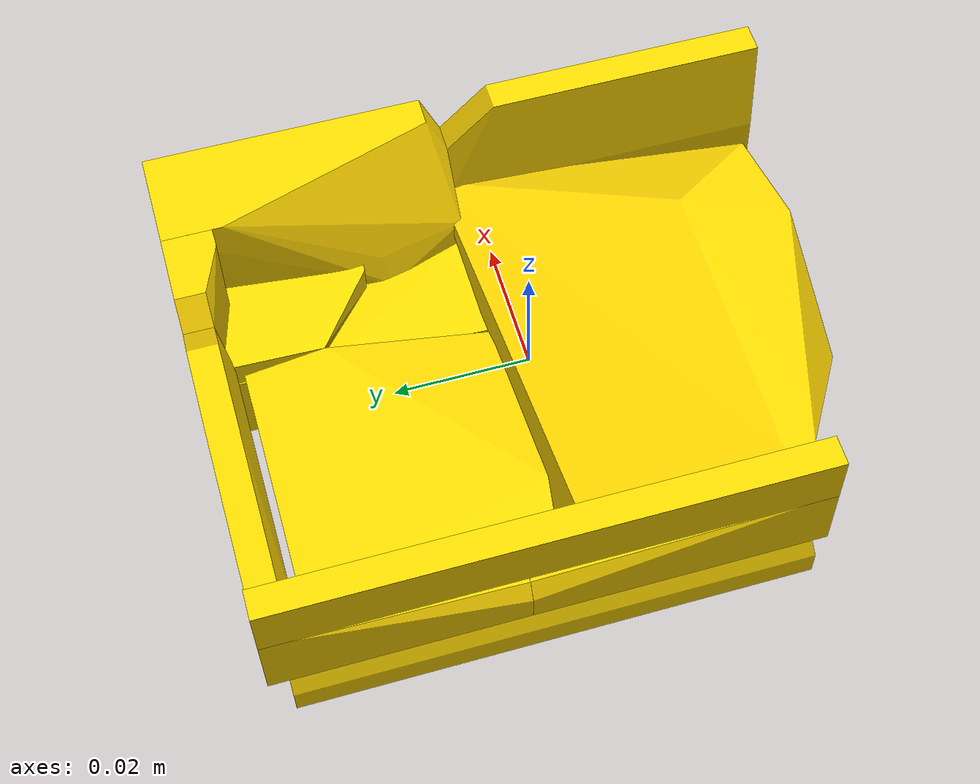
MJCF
<mujoco model="shapenetsem9">
  <asset>
    <mesh file="meshes/shapenetsem9/shapenetsem9_0.stl" name="shapenetsem9_0" scale="0.8 0.8 0.8"/>
    <mesh file="meshes/shapenetsem9/shapenetsem9_1.stl" name="shapenetsem9_1" scale="0.8 0.8 0.8"/>
    <mesh file="meshes/shapenetsem9/shapenetsem9_2.stl" name="shapenetsem9_2" scale="0.8 0.8 0.8"/>
    <mesh file="meshes/shapenetsem9/shapenetsem9_3.stl" name="shapenetsem9_3" scale="0.8 0.8 0.8"/>
    <mesh file="meshes/shapenetsem9/shapenetsem9_4.stl" name="shapenetsem9_4" scale="0.8 0.8 0.8"/>
    <mesh file="meshes/shapenetsem9/shapenetsem9_5.stl" name="shapenetsem9_5" scale="0.8 0.8 0.8"/>
    <mesh file="meshes/shapenetsem9/shapenetsem9_6.stl" name="shapenetsem9_6" scale="0.8 0.8 0.8"/>
    <mesh file="meshes/shapenetsem9/shapenetsem9_7.stl" name="shapenetsem9_7" scale="0.8 0.8 0.8"/>
    <mesh file="meshes/shapenetsem9/shapenetsem9_8.stl" name="shapenetsem9_8" scale="0.8 0.8 0.8"/>
    <mesh file="meshes/shapenetsem9/shapenetsem9_9.stl" name="shapenetsem9_9" scale="0.8 0.8 0.8"/>
    <mesh file="meshes/shapenetsem9/shapenetsem9_10.stl" name="shapenetsem9_10" scale="0.8 0.8 0.8"/>
    <mesh file="meshes/shapenetsem9/shapenetsem9_11.stl" name="shapenetsem9_11" scale="0.8 0.8 0.8"/>
    <texture file="../textures/texture9-4.png" type="2d" name="tex-sem9"/>
    <material name="sem9" reflectance="0.7" texrepeat="90 90" texture="tex-sem9" texuniform="true"/>
  </asset>
  <worldbody>
    <body>
      <body name="collision">
        <geom pos="0 0 0" mesh="shapenetsem9_0" type="mesh" solimp="0.998 0.998 0.001" solref="0.001 1" density="100" friction="0.95 0.3 0.1" rgba="1 0.84 0 1" group="1" condim="4"/>
        <geom pos="0 0 0" mesh="shapenetsem9_1" type="mesh" solimp="0.998 0.998 0.001" solref="0.001 1" density="100" friction="0.95 0.3 0.1" rgba="1 0.84 0 1" group="1" condim="4"/>
        <geom pos="0 0 0" mesh="shapenetsem9_2" type="mesh" solimp="0.998 0.998 0.001" solref="0.001 1" density="100" friction="0.95 0.3 0.1" rgba="1 0.84 0 1" group="1" condim="4"/>
        <geom pos="0 0 0" mesh="shapenetsem9_3" type="mesh" solimp="0.998 0.998 0.001" solref="0.001 1" density="100" friction="0.95 0.3 0.1" rgba="1 0.84 0 1" group="1" condim="4"/>
        <geom pos="0 0 0" mesh="shapenetsem9_4" type="mesh" solimp="0.998 0.998 0.001" solref="0.001 1" density="100" friction="0.95 0.3 0.1" rgba="1 0.84 0 1" group="1" condim="4"/>
        <geom pos="0 0 0" mesh="shapenetsem9_5" type="mesh" solimp="0.998 0.998 0.001" solref="0.001 1" density="100" friction="0.95 0.3 0.1" rgba="1 0.84 0 1" group="1" condim="4"/>
        <geom pos="0 0 0" mesh="shapenetsem9_6" type="mesh" solimp="0.998 0.998 0.001" solref="0.001 1" density="100" friction="0.95 0.3 0.1" rgba="1 0.84 0 1" group="1" condim="4"/>
        <geom pos="0 0 0" mesh="shapenetsem9_7" type="mesh" solimp="0.998 0.998 0.001" solref="0.001 1" density="100" friction="0.95 0.3 0.1" rgba="1 0.84 0 1" group="1" condim="4"/>
        <geom pos="0 0 0" mesh="shapenetsem9_8" type="mesh" solimp="0.998 0.998 0.001" solref="0.001 1" density="100" friction="0.95 0.3 0.1" rgba="1 0.84 0 1" group="1" condim="4"/>
        <geom pos="0 0 0" mesh="shapenetsem9_9" type="mesh" solimp="0.998 0.998 0.001" solref="0.001 1" density="100" friction="0.95 0.3 0.1" rgba="1 0.84 0 1" group="1" condim="4"/>
        <geom pos="0 0 0" mesh="shapenetsem9_10" type="mesh" solimp="0.998 0.998 0.001" solref="0.001 1" density="100" friction="0.95 0.3 0.1" rgba="1 0.84 0 1" group="1" condim="4"/>
        <geom pos="0 0 0" mesh="shapenetsem9_11" type="mesh" solimp="0.998 0.998 0.001" solref="0.001 1" density="100" friction="0.95 0.3 0.1" rgba="1 0.84 0 1" group="1" condim="4"/>
      </body>
      <body name="visual">
        <geom pos="0 0 0" mesh="shapenetsem9_0" type="mesh" rgba="0 1 0 1" conaffinity="0" contype="0" group="0" mass="0.0001"/>
        <geom pos="0 0 0" mesh="shapenetsem9_1" type="mesh" rgba="0 1 0 1" conaffinity="0" contype="0" group="0" mass="0.0001"/>
        <geom pos="0 0 0" mesh="shapenetsem9_2" type="mesh" rgba="0 1 0 1" conaffinity="0" contype="0" group="0" mass="0.0001"/>
        <geom pos="0 0 0" mesh="shapenetsem9_3" type="mesh" rgba="0 1 0 1" conaffinity="0" contype="0" group="0" mass="0.0001"/>
        <geom pos="0 0 0" mesh="shapenetsem9_4" type="mesh" rgba="0 1 0 1" conaffinity="0" contype="0" group="0" mass="0.0001"/>
        <geom pos="0 0 0" mesh="shapenetsem9_5" type="mesh" rgba="0 1 0 1" conaffinity="0" contype="0" group="0" mass="0.0001"/>
        <geom pos="0 0 0" mesh="shapenetsem9_6" type="mesh" rgba="0 1 0 1" conaffinity="0" contype="0" group="0" mass="0.0001"/>
        <geom pos="0 0 0" mesh="shapenetsem9_7" type="mesh" rgba="0 1 0 1" conaffinity="0" contype="0" group="0" mass="0.0001"/>
        <geom pos="0 0 0" mesh="shapenetsem9_8" type="mesh" rgba="0 1 0 1" conaffinity="0" contype="0" group="0" mass="0.0001"/>
        <geom pos="0 0 0" mesh="shapenetsem9_9" type="mesh" rgba="0 1 0 1" conaffinity="0" contype="0" group="0" mass="0.0001"/>
        <geom pos="0 0 0" mesh="shapenetsem9_10" type="mesh" rgba="0 1 0 1" conaffinity="0" contype="0" group="0" mass="0.0001"/>
        <geom pos="0 0 0" mesh="shapenetsem9_11" type="mesh" rgba="0 1 0 1" conaffinity="0" contype="0" group="0" mass="0.0001"/>
      </body>
      <site rgba="0 0 0 0" size="0.005" pos="0 0 -0.06" name="bottom_site"/>
      <site rgba="0 0 0 0" size="0.005" pos="0 0 0.04" name="top_site"/>
      <site rgba="0 0 0 0" size="0.005" pos="0.025 0.025 0" name="horizontal_radius_site"/>
    </body>
  </worldbody>
</mujoco>
